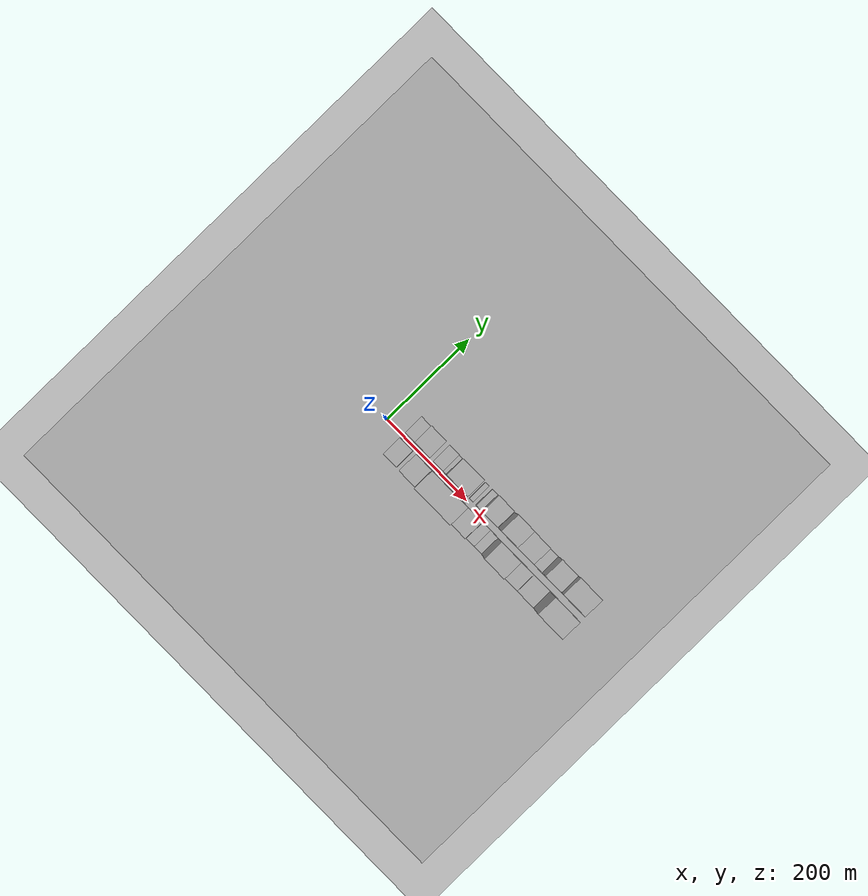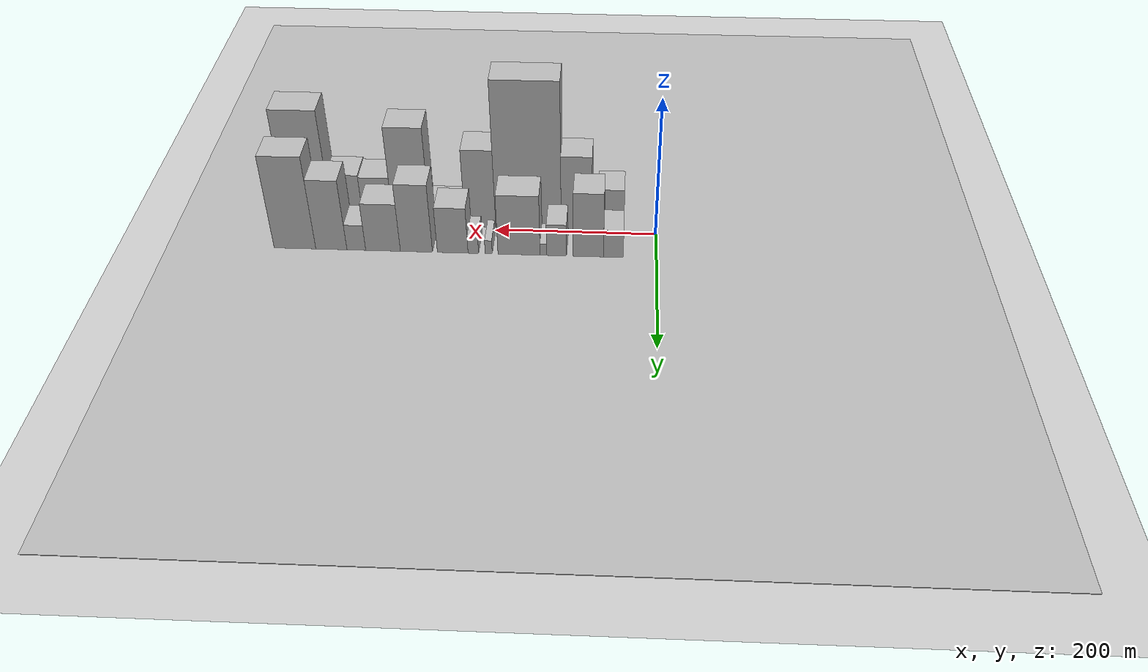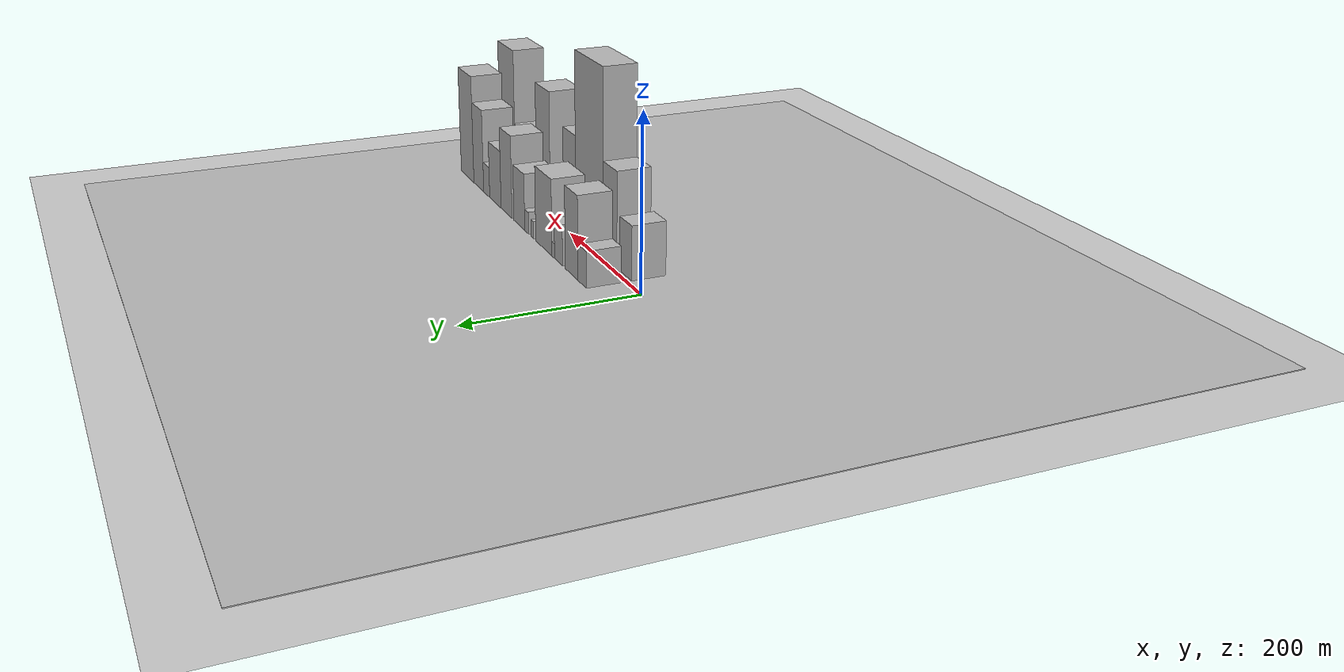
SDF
<?xml version="1.0" encoding="utf-8"?>

<sdf version="1.6">

   <world name="default">

      <gui fullscreen="0">

         <camera name="user_camera">

            <pose>-15 0 4.57585 0 0 0</pose>

            <view_controller>orbit</view_controller>

         </camera>

      </gui>

      <scene>

         <sky>

           <clouds>

             <speed>12</speed>

           </clouds>

         </sky>

         <ambient>0.4 0.4 0.4 1</ambient>

         <background>0.7 0.7 0.7 1</background>

         <shadows>1</shadows>

      </scene>

      <gravity>0 0 -9.8066</gravity>

      <magnetic_field>6e-06 2.3e-05 -4.2e-05</magnetic_field>

      <physics default="0" name="default_physics" type="ode">

         <ode>

            <solver>

               <type>quick</type>

               <iters>10</iters>

               <sor>1.0</sor>

               <use_dynamic_moi_rescaling>0</use_dynamic_moi_rescaling>

            </solver>

            <constraints>

               <cfm>0</cfm>

               <erp>0.2</erp>

               <contact_max_correcting_vel>100</contact_max_correcting_vel>

               <contact_surface_layer>0.001</contact_surface_layer>

            </constraints>

         </ode>

         <max_step_size>0.004</max_step_size>

         <real_time_factor>1</real_time_factor>

         <real_time_update_rate>250</real_time_update_rate>

      </physics>

      <light name="sun" type="directional">

         <cast_shadows>1</cast_shadows>

         <pose>0 0 10 0 0 0</pose>

         <diffuse>0.8 0.8 0.8 1</diffuse>

         <specular>0.2 0.2 0.2 1</specular>

         <attenuation>

            <range>1000</range>

            <constant>0.9</constant>

            <linear>0.01</linear>

            <quadratic>0.001</quadratic>

         </attenuation>

         <direction>-0.5 0.1 -0.9</direction>

      </light>

      <include>

         <name>ground_plane_1</name>

         <uri>model://HANNAS_ground_plane</uri>

         <pose>0 0 0  0 0 0</pose>

      </include>

      <include>

         <name>ground_plane_2</name>

         <uri>model://HANNAS_ground_plane</uri>

         <pose>100 0 0  0 0 0</pose>

      </include>

      <model name="building_1">

         <static>1</static>

         <pose frame="">51.9715 26.0000 0 0.000000 0.000000 1.570796</pose>

         <link name="link">

            <pose frame="">0 0 21.00 0 0 0</pose>

            <collision name="collision">

               <geometry>

                  <box>

                     <size>40.0000 23.9430 42.0000</size>

                  </box>

               </geometry>

               <max_contacts>10</max_contacts>

               <surface>

                  <contact>

                     <ode/>

                  </contact>

                  <bounce/>

                  <friction>

                     <torsional>

                        <ode/>

                     </torsional>

                     <ode/>

                  </friction>

               </surface>

            </collision>

            <visual name="visual">

               <cast_shadows>0</cast_shadows>

               <geometry>

                  <box>

                     <size>40.0000 23.9430 42.0000</size>

                  </box>

               </geometry>

               <material>

                  <script>

                     <uri>model://HANNAS_wall/materials/scripts</uri>

                     <uri>model://HANNAS_wall/materials/textures</uri>

                     <name>vrc/HANNAS_wall</name>

                  </script>

               </material>

            </visual>

            <self_collide>0</self_collide>

            <enable_wind>0</enable_wind>

            <kinematic>0</kinematic>

         </link>

      </model>

      <model name="building_2">

         <static>1</static>

         <pose frame="">82.3610 26.0000 0 0.000000 0.000000 1.570796</pose>

         <link name="link">

            <pose frame="">0 0 48.00 0 0 0</pose>

            <collision name="collision">

               <geometry>

                  <box>

                     <size>40.0000 36.8362 96.0000</size>

                  </box>

               </geometry>

               <max_contacts>10</max_contacts>

               <surface>

                  <contact>

                     <ode/>

                  </contact>

                  <bounce/>

                  <friction>

                     <torsional>

                        <ode/>

                     </torsional>

                     <ode/>

                  </friction>

               </surface>

            </collision>

            <visual name="visual">

               <cast_shadows>0</cast_shadows>

               <geometry>

                  <box>

                     <size>40.0000 36.8362 96.0000</size>

                  </box>

               </geometry>

               <material>

                  <script>

                     <uri>model://HANNAS_wall/materials/scripts</uri>

                     <uri>model://HANNAS_wall/materials/textures</uri>

                     <name>vrc/HANNAS_wall</name>

                  </script>

               </material>

            </visual>

            <self_collide>0</self_collide>

            <enable_wind>0</enable_wind>

            <kinematic>0</kinematic>

         </link>

      </model>

      <model name="building_3">

         <static>1</static>

         <pose frame="">120.9067 26.0000 0 0.000000 0.000000 1.570796</pose>

         <link name="link">

            <pose frame="">0 0 24.00 0 0 0</pose>

            <collision name="collision">

               <geometry>

                  <box>

                     <size>40.0000 24.2551 48.0000</size>

                  </box>

               </geometry>

               <max_contacts>10</max_contacts>

               <surface>

                  <contact>

                     <ode/>

                  </contact>

                  <bounce/>

                  <friction>

                     <torsional>

                        <ode/>

                     </torsional>

                     <ode/>

                  </friction>

               </surface>

            </collision>

            <visual name="visual">

               <cast_shadows>0</cast_shadows>

               <geometry>

                  <box>

                     <size>40.0000 24.2551 48.0000</size>

                  </box>

               </geometry>

               <material>

                  <script>

                     <uri>model://HANNAS_wall/materials/scripts</uri>

                     <uri>model://HANNAS_wall/materials/textures</uri>

                     <name>vrc/HANNAS_wall</name>

                  </script>

               </material>

            </visual>

            <self_collide>0</self_collide>

            <enable_wind>0</enable_wind>

            <kinematic>0</kinematic>

         </link>

      </model>

      <model name="building_4">

         <static>1</static>

         <pose frame="">137.0696 26.0000 0 0.000000 0.000000 1.570796</pose>

         <link name="link">

            <pose frame="">0 0 9.00 0 0 0</pose>

            <collision name="collision">

               <geometry>

                  <box>

                     <size>40.0000 8.0706 18.0000</size>

                  </box>

               </geometry>

               <max_contacts>10</max_contacts>

               <surface>

                  <contact>

                     <ode/>

                  </contact>

                  <bounce/>

                  <friction>

                     <torsional>

                        <ode/>

                     </torsional>

                     <ode/>

                  </friction>

               </surface>

            </collision>

            <visual name="visual">

               <cast_shadows>0</cast_shadows>

               <geometry>

                  <box>

                     <size>40.0000 8.0706 18.0000</size>

                  </box>

               </geometry>

               <material>

                  <script>

                     <uri>model://HANNAS_wall/materials/scripts</uri>

                     <uri>model://HANNAS_wall/materials/textures</uri>

                     <name>vrc/HANNAS_wall</name>

                  </script>

               </material>

            </visual>

            <self_collide>0</self_collide>

            <enable_wind>0</enable_wind>

            <kinematic>0</kinematic>

         </link>

      </model>

      <model name="building_5">

         <static>1</static>

         <pose frame="">166.7779 26.0000 0 0.000000 0.000000 1.570796</pose>

         <link name="link">

            <pose frame="">0 0 45.00 0 0 0</pose>

            <collision name="collision">

               <geometry>

                  <box>

                     <size>40.0000 51.3461 90.0000</size>

                  </box>

               </geometry>

               <max_contacts>10</max_contacts>

               <surface>

                  <contact>

                     <ode/>

                  </contact>

                  <bounce/>

                  <friction>

                     <torsional>

                        <ode/>

                     </torsional>

                     <ode/>

                  </friction>

               </surface>

            </collision>

            <visual name="visual">

               <cast_shadows>0</cast_shadows>

               <geometry>

                  <box>

                     <size>40.0000 51.3461 90.0000</size>

                  </box>

               </geometry>

               <material>

                  <script>

                     <uri>model://HANNAS_wall/materials/scripts</uri>

                     <uri>model://HANNAS_wall/materials/textures</uri>

                     <name>vrc/HANNAS_wall</name>

                  </script>

               </material>

            </visual>

            <self_collide>0</self_collide>

            <enable_wind>0</enable_wind>

            <kinematic>0</kinematic>

         </link>

      </model>

      <model name="building_6">

         <static>1</static>

         <pose frame="">203.7798 26.0000 0 0.000000 0.000000 1.570796</pose>

         <link name="link">

            <pose frame="">0 0 10.50 0 0 0</pose>

            <collision name="collision">

               <geometry>

                  <box>

                     <size>40.0000 8.6576 21.0000</size>

                  </box>

               </geometry>

               <max_contacts>10</max_contacts>

               <surface>

                  <contact>

                     <ode/>

                  </contact>

                  <bounce/>

                  <friction>

                     <torsional>

                        <ode/>

                     </torsional>

                     <ode/>

                  </friction>

               </surface>

            </collision>

            <visual name="visual">

               <cast_shadows>0</cast_shadows>

               <geometry>

                  <box>

                     <size>40.0000 8.6576 21.0000</size>

                  </box>

               </geometry>

               <material>

                  <script>

                     <uri>model://HANNAS_wall/materials/scripts</uri>

                     <uri>model://HANNAS_wall/materials/textures</uri>

                     <name>vrc/HANNAS_wall</name>

                  </script>

               </material>

            </visual>

            <self_collide>0</self_collide>

            <enable_wind>0</enable_wind>

            <kinematic>0</kinematic>

         </link>

      </model>

      <model name="building_7">

         <static>1</static>

         <pose frame="">222.5685 26.0000 0 0.000000 0.000000 1.570796</pose>

         <link name="link">

            <pose frame="">0 0 13.50 0 0 0</pose>

            <collision name="collision">

               <geometry>

                  <box>

                     <size>40.0000 12.9198 27.0000</size>

                  </box>

               </geometry>

               <max_contacts>10</max_contacts>

               <surface>

                  <contact>

                     <ode/>

                  </contact>

                  <bounce/>

                  <friction>

                     <torsional>

                        <ode/>

                     </torsional>

                     <ode/>

                  </friction>

               </surface>

            </collision>

            <visual name="visual">

               <cast_shadows>0</cast_shadows>

               <geometry>

                  <box>

                     <size>40.0000 12.9198 27.0000</size>

                  </box>

               </geometry>

               <material>

                  <script>

                     <uri>model://HANNAS_wall/materials/scripts</uri>

                     <uri>model://HANNAS_wall/materials/textures</uri>

                     <name>vrc/HANNAS_wall</name>

                  </script>

               </material>

            </visual>

            <self_collide>0</self_collide>

            <enable_wind>0</enable_wind>

            <kinematic>0</kinematic>

         </link>

      </model>

      <model name="building_8">

         <static>1</static>

         <pose frame="">247.8269 26.0000 0 0.000000 0.000000 1.570796</pose>

         <link name="link">

            <pose frame="">0 0 34.50 0 0 0</pose>

            <collision name="collision">

               <geometry>

                  <box>

                     <size>40.0000 37.5970 69.0000</size>

                  </box>

               </geometry>

               <max_contacts>10</max_contacts>

               <surface>

                  <contact>

                     <ode/>

                  </contact>

                  <bounce/>

                  <friction>

                     <torsional>

                        <ode/>

                     </torsional>

                     <ode/>

                  </friction>

               </surface>

            </collision>

            <visual name="visual">

               <cast_shadows>0</cast_shadows>

               <geometry>

                  <box>

                     <size>40.0000 37.5970 69.0000</size>

                  </box>

               </geometry>

               <material>

                  <script>

                     <uri>model://HANNAS_wall/materials/scripts</uri>

                     <uri>model://HANNAS_wall/materials/textures</uri>

                     <name>vrc/HANNAS_wall</name>

                  </script>

               </material>

            </visual>

            <self_collide>0</self_collide>

            <enable_wind>0</enable_wind>

            <kinematic>0</kinematic>

         </link>

      </model>

      <model name="building_9">

         <static>1</static>

         <pose frame="">292.3299 26.0000 0 0.000000 0.000000 1.570796</pose>

         <link name="link">

            <pose frame="">0 0 51.00 0 0 0</pose>

            <collision name="collision">

               <geometry>

                  <box>

                     <size>40.0000 39.4089 102.0000</size>

                  </box>

               </geometry>

               <max_contacts>10</max_contacts>

               <surface>

                  <contact>

                     <ode/>

                  </contact>

                  <bounce/>

                  <friction>

                     <torsional>

                        <ode/>

                     </torsional>

                     <ode/>

                  </friction>

               </surface>

            </collision>

            <visual name="visual">

               <cast_shadows>0</cast_shadows>

               <geometry>

                  <box>

                     <size>40.0000 39.4089 102.0000</size>

                  </box>

               </geometry>

               <material>

                  <script>

                     <uri>model://HANNAS_wall/materials/scripts</uri>

                     <uri>model://HANNAS_wall/materials/textures</uri>

                     <name>vrc/HANNAS_wall</name>

                  </script>

               </material>

            </visual>

            <self_collide>0</self_collide>

            <enable_wind>0</enable_wind>

            <kinematic>0</kinematic>

         </link>

      </model>

      <model name="building_10">

         <static>1</static>

         <pose frame="">333.3334 26.0000 0 0.000000 0.000000 1.570796</pose>

         <link name="link">

            <pose frame="">0 0 36.00 0 0 0</pose>

            <collision name="collision">

               <geometry>

                  <box>

                     <size>40.0000 42.5983 72.0000</size>

                  </box>

               </geometry>

               <max_contacts>10</max_contacts>

               <surface>

                  <contact>

                     <ode/>

                  </contact>

                  <bounce/>

                  <friction>

                     <torsional>

                        <ode/>

                     </torsional>

                     <ode/>

                  </friction>

               </surface>

            </collision>

            <visual name="visual">

               <cast_shadows>0</cast_shadows>

               <geometry>

                  <box>

                     <size>40.0000 42.5983 72.0000</size>

                  </box>

               </geometry>

               <material>

                  <script>

                     <uri>model://HANNAS_wall/materials/scripts</uri>

                     <uri>model://HANNAS_wall/materials/textures</uri>

                     <name>vrc/HANNAS_wall</name>

                  </script>

               </material>

            </visual>

            <self_collide>0</self_collide>

            <enable_wind>0</enable_wind>

            <kinematic>0</kinematic>

         </link>

      </model>

      <model name="building_11">

         <static>1</static>

         <pose frame="">366.2044 26.0000 0 0.000000 0.000000 1.570796</pose>

         <link name="link">

            <pose frame="">0 0 19.50 0 0 0</pose>

            <collision name="collision">

               <geometry>

                  <box>

                     <size>40.0000 23.1437 39.0000</size>

                  </box>

               </geometry>

               <max_contacts>10</max_contacts>

               <surface>

                  <contact>

                     <ode/>

                  </contact>

                  <bounce/>

                  <friction>

                     <torsional>

                        <ode/>

                     </torsional>

                     <ode/>

                  </friction>

               </surface>

            </collision>

            <visual name="visual">

               <cast_shadows>0</cast_shadows>

               <geometry>

                  <box>

                     <size>40.0000 23.1437 39.0000</size>

                  </box>

               </geometry>

               <material>

                  <script>

                     <uri>model://HANNAS_wall/materials/scripts</uri>

                     <uri>model://HANNAS_wall/materials/textures</uri>

                     <name>vrc/HANNAS_wall</name>

                  </script>

               </material>

            </visual>

            <self_collide>0</self_collide>

            <enable_wind>0</enable_wind>

            <kinematic>0</kinematic>

         </link>

      </model>

      <model name="building_12">

         <static>1</static>

         <pose frame="">396.9869 26.0000 0 0.000000 0.000000 1.570796</pose>

         <link name="link">

            <pose frame="">0 0 52.50 0 0 0</pose>

            <collision name="collision">

               <geometry>

                  <box>

                     <size>40.0000 38.4212 105.0000</size>

                  </box>

               </geometry>

               <max_contacts>10</max_contacts>

               <surface>

                  <contact>

                     <ode/>

                  </contact>

                  <bounce/>

                  <friction>

                     <torsional>

                        <ode/>

                     </torsional>

                     <ode/>

                  </friction>

               </surface>

            </collision>

            <visual name="visual">

               <cast_shadows>0</cast_shadows>

               <geometry>

                  <box>

                     <size>40.0000 38.4212 105.0000</size>

                  </box>

               </geometry>

               <material>

                  <script>

                     <uri>model://HANNAS_wall/materials/scripts</uri>

                     <uri>model://HANNAS_wall/materials/textures</uri>

                     <name>vrc/HANNAS_wall</name>

                  </script>

               </material>

            </visual>

            <self_collide>0</self_collide>

            <enable_wind>0</enable_wind>

            <kinematic>0</kinematic>

         </link>

      </model>

      <model name="building_13">

         <static>1</static>

         <pose frame="">441.9548 26.0000 0 0.000000 0.000000 1.570796</pose>

         <link name="link">

            <pose frame="">0 0 69.00 0 0 0</pose>

            <collision name="collision">

               <geometry>

                  <box>

                     <size>40.0000 51.5146 138.0000</size>

                  </box>

               </geometry>

               <max_contacts>10</max_contacts>

               <surface>

                  <contact>

                     <ode/>

                  </contact>

                  <bounce/>

                  <friction>

                     <torsional>

                        <ode/>

                     </torsional>

                     <ode/>

                  </friction>

               </surface>

            </collision>

            <visual name="visual">

               <cast_shadows>0</cast_shadows>

               <geometry>

                  <box>

                     <size>40.0000 51.5146 138.0000</size>

                  </box>

               </geometry>

               <material>

                  <script>

                     <uri>model://HANNAS_wall/materials/scripts</uri>

                     <uri>model://HANNAS_wall/materials/textures</uri>

                     <name>vrc/HANNAS_wall</name>

                  </script>

               </material>

            </visual>

            <self_collide>0</self_collide>

            <enable_wind>0</enable_wind>

            <kinematic>0</kinematic>

         </link>

      </model>

      <model name="building_14">

         <static>1</static>

         <pose frame="">56.0325 -26.0000 0 0.000000 0.000000 1.570796</pose>

         <link name="link">

            <pose frame="">0 0 31.50 0 0 0</pose>

            <collision name="collision">

               <geometry>

                  <box>

                     <size>40.0000 32.0649 63.0000</size>

                  </box>

               </geometry>

               <max_contacts>10</max_contacts>

               <surface>

                  <contact>

                     <ode/>

                  </contact>

                  <bounce/>

                  <friction>

                     <torsional>

                        <ode/>

                     </torsional>

                     <ode/>

                  </friction>

               </surface>

            </collision>

            <visual name="visual">

               <cast_shadows>0</cast_shadows>

               <geometry>

                  <box>

                     <size>40.0000 32.0649 63.0000</size>

                  </box>

               </geometry>

               <material>

                  <script>

                     <uri>model://HANNAS_wall/materials/scripts</uri>

                     <uri>model://HANNAS_wall/materials/textures</uri>

                     <name>vrc/HANNAS_wall</name>

                  </script>

               </material>

            </visual>

            <self_collide>0</self_collide>

            <enable_wind>0</enable_wind>

            <kinematic>0</kinematic>

         </link>

      </model>

      <model name="building_15">

         <static>1</static>

         <pose frame="">99.0737 -26.0000 0 0.000000 0.000000 1.570796</pose>

         <link name="link">

            <pose frame="">0 0 55.50 0 0 0</pose>

            <collision name="collision">

               <geometry>

                  <box>

                     <size>40.0000 38.0176 111.0000</size>

                  </box>

               </geometry>

               <max_contacts>10</max_contacts>

               <surface>

                  <contact>

                     <ode/>

                  </contact>

                  <bounce/>

                  <friction>

                     <torsional>

                        <ode/>

                     </torsional>

                     <ode/>

                  </friction>

               </surface>

            </collision>

            <visual name="visual">

               <cast_shadows>0</cast_shadows>

               <geometry>

                  <box>

                     <size>40.0000 38.0176 111.0000</size>

                  </box>

               </geometry>

               <material>

                  <script>

                     <uri>model://HANNAS_wall/materials/scripts</uri>

                     <uri>model://HANNAS_wall/materials/textures</uri>

                     <name>vrc/HANNAS_wall</name>

                  </script>

               </material>

            </visual>

            <self_collide>0</self_collide>

            <enable_wind>0</enable_wind>

            <kinematic>0</kinematic>

         </link>

      </model>

      <model name="building_16">

         <static>1</static>

         <pose frame="">159.0744 -26.0000 0 0.000000 0.000000 1.570796</pose>

         <link name="link">

            <pose frame="">0 0 108.00 0 0 0</pose>

            <collision name="collision">

               <geometry>

                  <box>

                     <size>40.0000 81.9837 216.0000</size>

                  </box>

               </geometry>

               <max_contacts>10</max_contacts>

               <surface>

                  <contact>

                     <ode/>

                  </contact>

                  <bounce/>

                  <friction>

                     <torsional>

                        <ode/>

                     </torsional>

                     <ode/>

                  </friction>

               </surface>

            </collision>

            <visual name="visual">

               <cast_shadows>0</cast_shadows>

               <geometry>

                  <box>

                     <size>40.0000 81.9837 216.0000</size>

                  </box>

               </geometry>

               <material>

                  <script>

                     <uri>model://HANNAS_wall/materials/scripts</uri>

                     <uri>model://HANNAS_wall/materials/textures</uri>

                     <name>vrc/HANNAS_wall</name>

                  </script>

               </material>

            </visual>

            <self_collide>0</self_collide>

            <enable_wind>0</enable_wind>

            <kinematic>0</kinematic>

         </link>

      </model>

      <model name="building_17">

         <static>1</static>

         <pose frame="">219.2657 -26.0000 0 0.000000 0.000000 1.570796</pose>

         <link name="link">

            <pose frame="">0 0 58.50 0 0 0</pose>

            <collision name="collision">

               <geometry>

                  <box>

                     <size>40.0000 38.3988 117.0000</size>

                  </box>

               </geometry>

               <max_contacts>10</max_contacts>

               <surface>

                  <contact>

                     <ode/>

                  </contact>

                  <bounce/>

                  <friction>

                     <torsional>

                        <ode/>

                     </torsional>

                     <ode/>

                  </friction>

               </surface>

            </collision>

            <visual name="visual">

               <cast_shadows>0</cast_shadows>

               <geometry>

                  <box>

                     <size>40.0000 38.3988 117.0000</size>

                  </box>

               </geometry>

               <material>

                  <script>

                     <uri>model://HANNAS_wall/materials/scripts</uri>

                     <uri>model://HANNAS_wall/materials/textures</uri>

                     <name>vrc/HANNAS_wall</name>

                  </script>

               </material>

            </visual>

            <self_collide>0</self_collide>

            <enable_wind>0</enable_wind>

            <kinematic>0</kinematic>

         </link>

      </model>

      <model name="building_18">

         <static>1</static>

         <pose frame="">241.5494 -26.0000 0 0.000000 0.000000 1.570796</pose>

         <link name="link">

            <pose frame="">0 0 7.50 0 0 0</pose>

            <collision name="collision">

               <geometry>

                  <box>

                     <size>40.0000 6.1686 15.0000</size>

                  </box>

               </geometry>

               <max_contacts>10</max_contacts>

               <surface>

                  <contact>

                     <ode/>

                  </contact>

                  <bounce/>

                  <friction>

                     <torsional>

                        <ode/>

                     </torsional>

                     <ode/>

                  </friction>

               </surface>

            </collision>

            <visual name="visual">

               <cast_shadows>0</cast_shadows>

               <geometry>

                  <box>

                     <size>40.0000 6.1686 15.0000</size>

                  </box>

               </geometry>

               <material>

                  <script>

                     <uri>model://HANNAS_wall/materials/scripts</uri>

                     <uri>model://HANNAS_wall/materials/textures</uri>

                     <name>vrc/HANNAS_wall</name>

                  </script>

               </material>

            </visual>

            <self_collide>0</self_collide>

            <enable_wind>0</enable_wind>

            <kinematic>0</kinematic>

         </link>

      </model>

      <model name="building_19">

         <static>1</static>

         <pose frame="">254.2093 -26.0000 0 0.000000 0.000000 1.570796</pose>

         <link name="link">

            <pose frame="">0 0 16.50 0 0 0</pose>

            <collision name="collision">

               <geometry>

                  <box>

                     <size>40.0000 19.1513 33.0000</size>

                  </box>

               </geometry>

               <max_contacts>10</max_contacts>

               <surface>

                  <contact>

                     <ode/>

                  </contact>

                  <bounce/>

                  <friction>

                     <torsional>

                        <ode/>

                     </torsional>

                     <ode/>

                  </friction>

               </surface>

            </collision>

            <visual name="visual">

               <cast_shadows>0</cast_shadows>

               <geometry>

                  <box>

                     <size>40.0000 19.1513 33.0000</size>

                  </box>

               </geometry>

               <material>

                  <script>

                     <uri>model://HANNAS_wall/materials/scripts</uri>

                     <uri>model://HANNAS_wall/materials/textures</uri>

                     <name>vrc/HANNAS_wall</name>

                  </script>

               </material>

            </visual>

            <self_collide>0</self_collide>

            <enable_wind>0</enable_wind>

            <kinematic>0</kinematic>

         </link>

      </model>

      <model name="building_20">

         <static>1</static>

         <pose frame="">273.0281 -26.0000 0 0.000000 0.000000 1.570796</pose>

         <link name="link">

            <pose frame="">0 0 16.50 0 0 0</pose>

            <collision name="collision">

               <geometry>

                  <box>

                     <size>40.0000 18.4862 33.0000</size>

                  </box>

               </geometry>

               <max_contacts>10</max_contacts>

               <surface>

                  <contact>

                     <ode/>

                  </contact>

                  <bounce/>

                  <friction>

                     <torsional>

                        <ode/>

                     </torsional>

                     <ode/>

                  </friction>

               </surface>

            </collision>

            <visual name="visual">

               <cast_shadows>0</cast_shadows>

               <geometry>

                  <box>

                     <size>40.0000 18.4862 33.0000</size>

                  </box>

               </geometry>

               <material>

                  <script>

                     <uri>model://HANNAS_wall/materials/scripts</uri>

                     <uri>model://HANNAS_wall/materials/textures</uri>

                     <name>vrc/HANNAS_wall</name>

                  </script>

               </material>

            </visual>

            <self_collide>0</self_collide>

            <enable_wind>0</enable_wind>

            <kinematic>0</kinematic>

         </link>

      </model>

      <model name="building_21">

         <static>1</static>

         <pose frame="">305.5259 -26.0000 0 0.000000 0.000000 1.570796</pose>

         <link name="link">

            <pose frame="">0 0 73.50 0 0 0</pose>

            <collision name="collision">

               <geometry>

                  <box>

                     <size>40.0000 46.5095 147.0000</size>

                  </box>

               </geometry>

               <max_contacts>10</max_contacts>

               <surface>

                  <contact>

                     <ode/>

                  </contact>

                  <bounce/>

                  <friction>

                     <torsional>

                        <ode/>

                     </torsional>

                     <ode/>

                  </friction>

               </surface>

            </collision>

            <visual name="visual">

               <cast_shadows>0</cast_shadows>

               <geometry>

                  <box>

                     <size>40.0000 46.5095 147.0000</size>

                  </box>

               </geometry>

               <material>

                  <script>

                     <uri>model://HANNAS_wall/materials/scripts</uri>

                     <uri>model://HANNAS_wall/materials/textures</uri>

                     <name>vrc/HANNAS_wall</name>

                  </script>

               </material>

            </visual>

            <self_collide>0</self_collide>

            <enable_wind>0</enable_wind>

            <kinematic>0</kinematic>

         </link>

      </model>

      <model name="building_22">

         <static>1</static>

         <pose frame="">347.6304 -26.0000 0 0.000000 0.000000 1.570796</pose>

         <link name="link">

            <pose frame="">0 0 36.00 0 0 0</pose>

            <collision name="collision">

               <geometry>

                  <box>

                     <size>40.0000 37.6995 72.0000</size>

                  </box>

               </geometry>

               <max_contacts>10</max_contacts>

               <surface>

                  <contact>

                     <ode/>

                  </contact>

                  <bounce/>

                  <friction>

                     <torsional>

                        <ode/>

                     </torsional>

                     <ode/>

                  </friction>

               </surface>

            </collision>

            <visual name="visual">

               <cast_shadows>0</cast_shadows>

               <geometry>

                  <box>

                     <size>40.0000 37.6995 72.0000</size>

                  </box>

               </geometry>

               <material>

                  <script>

                     <uri>model://HANNAS_wall/materials/scripts</uri>

                     <uri>model://HANNAS_wall/materials/textures</uri>

                     <name>vrc/HANNAS_wall</name>

                  </script>

               </material>

            </visual>

            <self_collide>0</self_collide>

            <enable_wind>0</enable_wind>

            <kinematic>0</kinematic>

         </link>

      </model>

      <model name="building_23">

         <static>1</static>

         <pose frame="">386.1064 -26.0000 0 0.000000 0.000000 1.570796</pose>

         <link name="link">

            <pose frame="">0 0 37.50 0 0 0</pose>

            <collision name="collision">

               <geometry>

                  <box>

                     <size>40.0000 39.2525 75.0000</size>

                  </box>

               </geometry>

               <max_contacts>10</max_contacts>

               <surface>

                  <contact>

                     <ode/>

                  </contact>

                  <bounce/>

                  <friction>

                     <torsional>

                        <ode/>

                     </torsional>

                     <ode/>

                  </friction>

               </surface>

            </collision>

            <visual name="visual">

               <cast_shadows>0</cast_shadows>

               <geometry>

                  <box>

                     <size>40.0000 39.2525 75.0000</size>

                  </box>

               </geometry>

               <material>

                  <script>

                     <uri>model://HANNAS_wall/materials/scripts</uri>

                     <uri>model://HANNAS_wall/materials/textures</uri>

                     <name>vrc/HANNAS_wall</name>

                  </script>

               </material>

            </visual>

            <self_collide>0</self_collide>

            <enable_wind>0</enable_wind>

            <kinematic>0</kinematic>

         </link>

      </model>

      <model name="building_24">

         <static>1</static>

         <pose frame="">434.3793 -26.0000 0 0.000000 0.000000 1.570796</pose>

         <link name="link">

            <pose frame="">0 0 84.00 0 0 0</pose>

            <collision name="collision">

               <geometry>

                  <box>

                     <size>40.0000 57.2933 168.0000</size>

                  </box>

               </geometry>

               <max_contacts>10</max_contacts>

               <surface>

                  <contact>

                     <ode/>

                  </contact>

                  <bounce/>

                  <friction>

                     <torsional>

                        <ode/>

                     </torsional>

                     <ode/>

                  </friction>

               </surface>

            </collision>

            <visual name="visual">

               <cast_shadows>0</cast_shadows>

               <geometry>

                  <box>

                     <size>40.0000 57.2933 168.0000</size>

                  </box>

               </geometry>

               <material>

                  <script>

                     <uri>model://HANNAS_wall/materials/scripts</uri>

                     <uri>model://HANNAS_wall/materials/textures</uri>

                     <name>vrc/HANNAS_wall</name>

                  </script>

               </material>

            </visual>

            <self_collide>0</self_collide>

            <enable_wind>0</enable_wind>

            <kinematic>0</kinematic>

         </link>

      </model>

   </world>

</sdf>

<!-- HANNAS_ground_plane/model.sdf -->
<sdf version="1.4">
<model name="HANNAS_ground_plane">
  <static>true</static>
    <link name="link">
      <collision name="collision">
        <geometry>
          <plane>
            <normal>0 0 1</normal>
            <size>1000 1000</size>
          </plane>
        </geometry>
        <surface>
          <friction>
            <ode>
              <mu>100</mu>
              <mu2>50</mu2>
            </ode>
          </friction>
        </surface>
      </collision>
      <visual name="visual">
        <cast_shadows>false</cast_shadows>
        <geometry>
          <plane>
            <normal>0 0 1</normal>
            <size>1000 1000</size>
          </plane>
        </geometry>
        <material>
          <script>
            <uri>model://HANNAS_ground_plane/materials/scripts/HANNAS_ground_plane.material</uri>
	    <uri>model://HANNAS_ground_plane/materials/textures</uri>
            <name>HANNASGroundPlane/Image</name>
          </script>
        </material>
      </visual>
    </link>
  </model>
</sdf>
